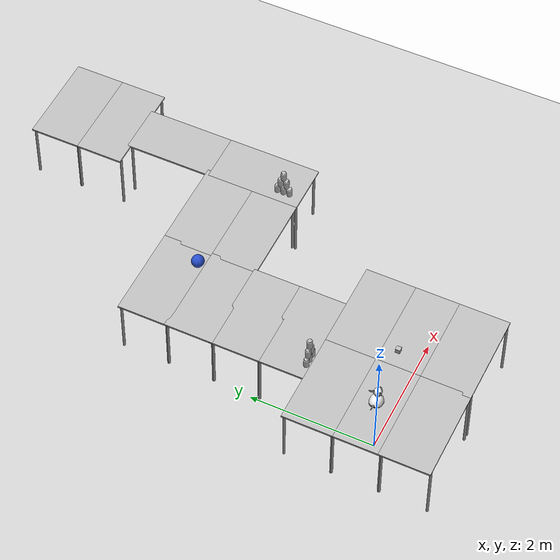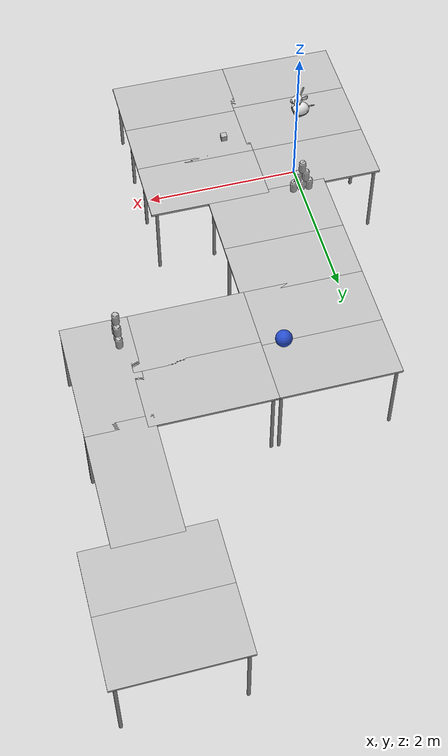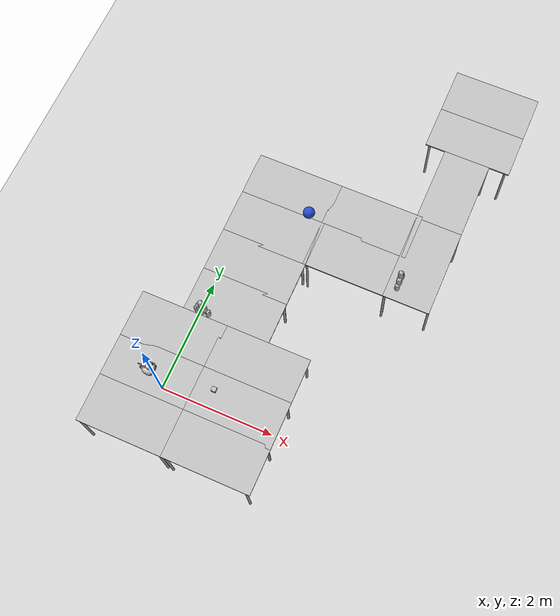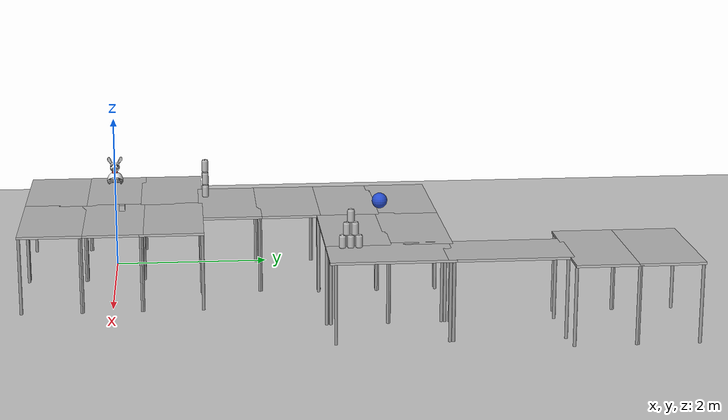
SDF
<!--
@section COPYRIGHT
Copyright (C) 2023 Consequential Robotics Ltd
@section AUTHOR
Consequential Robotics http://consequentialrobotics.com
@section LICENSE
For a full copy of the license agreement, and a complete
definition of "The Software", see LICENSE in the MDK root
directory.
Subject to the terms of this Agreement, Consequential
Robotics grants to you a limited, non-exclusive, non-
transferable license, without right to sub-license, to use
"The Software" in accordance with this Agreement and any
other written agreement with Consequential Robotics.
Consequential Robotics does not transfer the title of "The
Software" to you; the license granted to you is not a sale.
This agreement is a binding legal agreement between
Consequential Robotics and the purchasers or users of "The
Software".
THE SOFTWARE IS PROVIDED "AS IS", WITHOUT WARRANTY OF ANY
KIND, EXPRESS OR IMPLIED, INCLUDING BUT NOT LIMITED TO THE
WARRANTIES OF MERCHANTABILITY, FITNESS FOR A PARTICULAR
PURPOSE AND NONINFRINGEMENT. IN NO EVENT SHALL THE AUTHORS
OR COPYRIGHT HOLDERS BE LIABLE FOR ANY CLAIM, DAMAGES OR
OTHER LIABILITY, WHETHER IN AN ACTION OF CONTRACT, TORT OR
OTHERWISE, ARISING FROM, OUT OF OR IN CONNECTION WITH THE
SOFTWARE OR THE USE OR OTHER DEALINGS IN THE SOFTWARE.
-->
<sdf version="1.5">
 <world name="default">
  <physics name="default_physics" default="0" type="ode">
   <max_step_size>0.001</max_step_size>
   <real_time_factor>1</real_time_factor>
   <real_time_update_rate>1000</real_time_update_rate>
  </physics>
  <scene><ambient>0.4 0.4 0.4 1</ambient><background>0.7 0.7 0.7 1</background><shadows>0</shadows></scene>
  <light name="sun" type="directional">
   <cast_shadows>0</cast_shadows>
   <pose>0 0 10 0 -0 0</pose>
   <diffuse>0.8 0.8 0.8 1</diffuse>
   <specular>0.1 0.1 0.1 1</specular>
   <attenuation>
    <range>1000</range>
    <constant>0.9</constant>
    <linear>0.01</linear>
    <quadratic>0.001</quadratic>
   </attenuation>
   <direction>-0.5 0.5 -1</direction>
  </light>
  <include><uri>model://ground_plane</uri></include>
  <include><uri>model://miro_toy_ball</uri><pose>1.17628 3.43905 1.115 0 0 0</pose></include>
  <include><uri>model://miro_model</uri><pose>0 0 1.115 0 0 0</pose></include>
  <include><uri>model://mirocube</uri><pose>1.01306 0.113578 1.05249 0 -0 0</pose></include>
  <include><name>miro_table-14</name><uri>model://miro_table</uri><pose>0 -0.75 0 0 0 0</pose></include>
  <include><name>miro_table-15</name><uri>model://miro_table</uri><pose>1.45 -0.75 0 0 0 0</pose></include>
  <include><name>miro_table-0</name><uri>model://miro_table</uri></include>
  <include><name>miro_table-1</name><uri>model://miro_table</uri><pose>1.45 0 0 0 0 0</pose></include>
  <include><name>miro_table-2</name><uri>model://miro_table</uri><pose>0 0.75 0 0 0 0</pose></include>
  <include><name>miro_table-3</name><uri>model://miro_table</uri><pose>1.45 0.75 0 0 0 0</pose></include>
  <include><name>miro_table-4</name><uri>model://miro_table</uri><pose>0.725 1.5 0 0 0 0</pose></include>
  <include><name>miro_table-5</name><uri>model://miro_table</uri><pose>0.725 2.25 0 0 0 0</pose></include>
  <include><name>miro_table-6</name><uri>model://miro_table</uri><pose>0.725 3 0 0 0 0</pose></include>
  <include><name>miro_table-7</name><uri>model://miro_table</uri><pose>0.725 3.75 0 0 0 0</pose></include>
  <include><name>miro_table-8</name><uri>model://miro_table</uri><pose>2.175 3 0 0 0 0</pose></include>
  <include><name>miro_table-9</name><uri>model://miro_table</uri><pose>2.175 3.75 0 0 0 0</pose></include>
  <include><name>miro_table-10</name><uri>model://miro_table</uri><pose>3.23 3.35 0 0 0 1.57</pose></include>
  <include><name>miro_table-11</name><uri>model://miro_table</uri><pose>3.23 4.75 0 0 0 1.57</pose></include>
  <include><name>miro_table-12</name><uri>model://miro_table</uri><pose>3.23 5.85 0 0 0 0</pose></include>
  <include><name>miro_table-13</name><uri>model://miro_table</uri><pose>3.23 6.6 0 0 0 0</pose></include>
  <include><name>miro_can-0-0</name><uri>model://miro_can</uri><pose>0.2 1.2 1.014 0 0 1</pose></include>
  <include><name>miro_can-0-1</name><uri>model://miro_can</uri><pose>0.3 1.2 1.014 0 0 2</pose></include>
  <include><name>miro_can-0-2</name><uri>model://miro_can</uri><pose>0.4 1.2 1.014 0 0 3</pose></include>
  <include><name>miro_can-0-3</name><uri>model://miro_can</uri><pose>0.25 1.2 1.174 0 0 4</pose></include>
  <include><name>miro_can-0-4</name><uri>model://miro_can</uri><pose>0.35 1.2 1.174 0 0 5</pose></include>
  <include><name>miro_can-0-5</name><uri>model://miro_can</uri><pose>0.3 1.2 1.334 0 0 6</pose></include>
  <include><name>miro_can-1-0</name><uri>model://miro_can</uri><pose>3.0 2.8 1.014 0 0 0</pose></include>
  <include><name>miro_can-1-1</name><uri>model://miro_can</uri><pose>3.0 2.9 1.014 0 0 1</pose></include>
  <include><name>miro_can-1-2</name><uri>model://miro_can</uri><pose>3.0 3.0 1.014 0 0 2</pose></include>
  <include><name>miro_can-1-3</name><uri>model://miro_can</uri><pose>3.0 2.85 1.174 0 0 3</pose></include>
  <include><name>miro_can-1-4</name><uri>model://miro_can</uri><pose>3.0 2.95 1.174 0 0 4</pose></include>
  <include><name>miro_can-1-5</name><uri>model://miro_can</uri><pose>3.0 2.9 1.334 0 0 5</pose></include>
  <light name="spot-light-0" type="spot">
   <pose>2.30789 0.093 1.55469 0 0.641896 0</pose>
   <diffuse>0.5 0.5 0.5 1</diffuse>
   <specular>0.1 0.1 0.1 1</specular>
   <direction>0 0 -1</direction>
   <attenuation>
    <range>20</range>
    <constant>0.5</constant>
    <linear>0.01</linear>
    <quadratic>0.001</quadratic>
   </attenuation>
   <spot><inner_angle>0.6</inner_angle><outer_angle>0.8</outer_angle><falloff>1.0</falloff></spot>
   <cast_shadows>0</cast_shadows>
  </light>
  <gravity>0 0 -9.8</gravity>
  <magnetic_field>6e-06 2.3e-05 -4.2e-05</magnetic_field>
  <atmosphere type="adiabatic"/>
  <spherical_coordinates>
   <surface_model>EARTH_WGS84</surface_model>
   <latitude_deg>0</latitude_deg>
   <longitude_deg>0</longitude_deg>
   <elevation>0</elevation>
   <heading_deg>0</heading_deg>
  </spherical_coordinates>
 </world>
</sdf>
